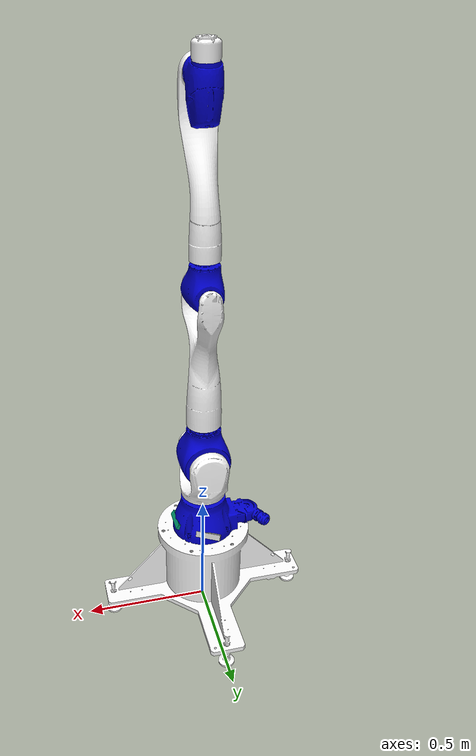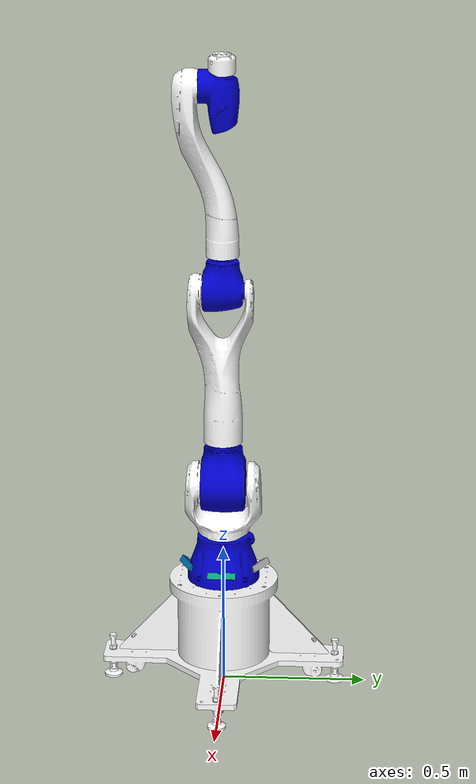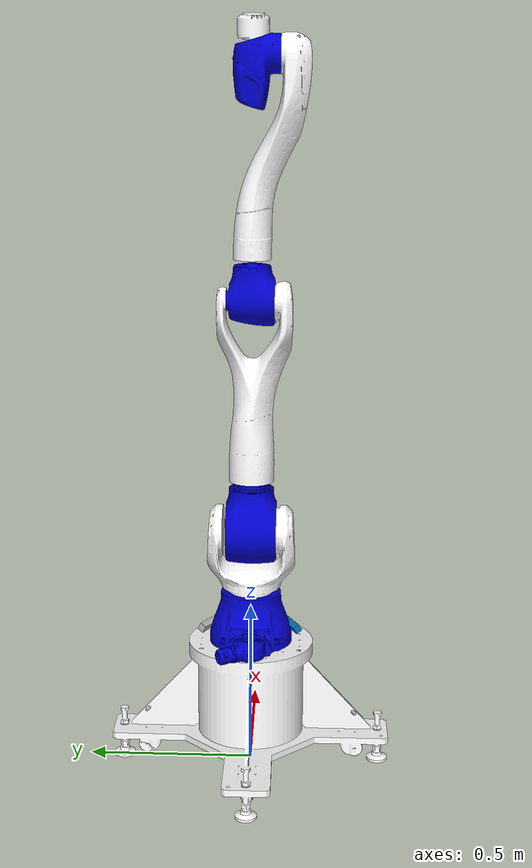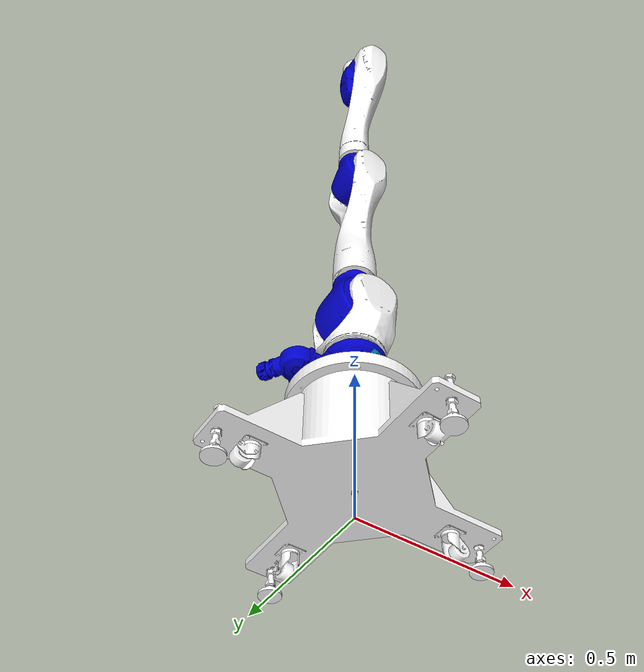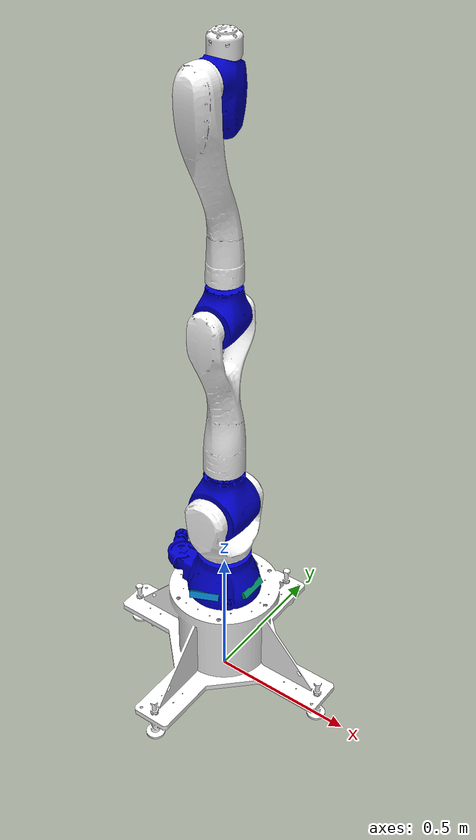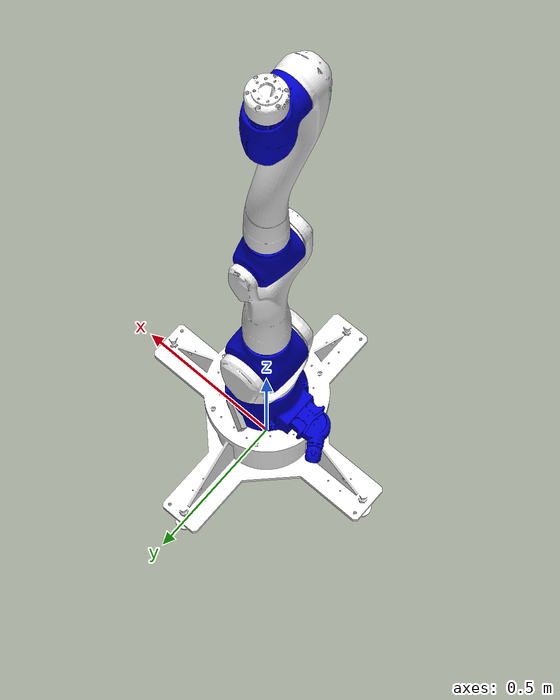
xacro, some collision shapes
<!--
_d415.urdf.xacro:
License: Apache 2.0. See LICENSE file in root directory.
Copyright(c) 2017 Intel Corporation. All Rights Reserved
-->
<?xml version="1.0"?>
<robot xmlns:xacro="http://wiki.ros.org/xacro"
       name="mira" >

  <xacro:arg name="transmission_hw_interface" default="hardware_interface/PositionJointInterface"/>
  <xacro:arg name="prefix" default=""/>

  <!-- mira -->
  <xacro:include filename="$(find mira_picker)/urdf/mira_picker_macro.xacro"/>
  <xacro:include filename="$(find mira_gazebo)/robots/mira.gazebo.xacro"/>
  <xacro:include filename="$(find mira_gazebo)/sensors/realsense_gazebo.xacro"/>

  <!-- arm -->
  <xacro:mira_picker prefix="$(arg prefix)" />
  <xacro:mira_arm_gazebo prefix="$(arg prefix)"  transmission_hw_interface="$(arg transmission_hw_interface)" />
  <xacro:realsense_gazebo prefix="$(arg prefix)"  />

</robot>

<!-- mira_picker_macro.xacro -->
<robot xmlns:xacro="http://wiki.ros.org/xacro"
       name="mira" >

    <xacro:arg name="prefix" default=""/>

    <xacro:include filename="$(find mira_description)/urdf/mira_sensors_macro.xacro" />

    <xacro:macro name="mira_picker" params="prefix wrist_cam_calibration=true dentist_camera=false">
        <xacro:mira_robot_sensors prefix="${prefix}" wrist_cam_calibration="${wrist_cam_calibration}" dentist_camera="${dentist_camera}"/>

        <link name="${prefix}table_calibration">
            <visual>
                <origin rpy="0 0 0" xyz="0 0 0"/>
                <geometry>
                    <mesh filename="package://mira_picker/meshes/table/visual/table_calibration.stl"/>
                </geometry>
                <material name="white"/>
                </visual>
        </link>
        <link name="world" />
        <joint name="world_joint" type="fixed">
            <parent link="world" />
            <child link = "${prefix}root_link" />
            <origin xyz="0.0 0.0 0.391" rpy="0.0 0.0 0.0" />
        </joint>
        <joint name="${prefix}baselink_table" type="fixed">
            <origin rpy="0 0 0.0" xyz="0 0 -0.310"/>
            <parent link="${prefix}root_link"/>
            <child link="${prefix}table_calibration"/>
        </joint>
        <link name="threejs_link" />
        <joint name="threejs_joint" type="fixed">
            <parent link="world" />
            <child link = "${prefix}threejs_link" />
            <origin xyz="0.0 0.0 0.391" rpy="1.5708 0.0 0.0" />
        </joint>
    </xacro:macro>
</robot>

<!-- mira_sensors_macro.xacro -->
<robot xmlns:xacro="http://wiki.ros.org/xacro" name="mira" >

  <xacro:include filename="$(find realsense2_description)/urdf/_d415.urdf.xacro" />
  <xacro:include filename="$(find mira_description)/urdf/mira_macro.xacro" />

  <!-- arm -->
  <xacro:macro name="mira_robot_sensors" params="prefix wrist_cam_calibration:=true dentist_camera:=^">
    <xacro:mira_robot prefix="${prefix}" parameter_file_name="mira_nominal"/>

    <!-- For simulation of wrist camera -->
    <xacro:unless value="${wrist_cam_calibration}">
      <link name="$(arg prefix)intermediate_camera_link" />
      <joint name="$(arg prefix)intermediate_camera_joint" type="fixed">
          <parent link="$(arg prefix)link6" />
          <child link = "$(arg prefix)intermediate_camera_link" />
          <origin rpy="0.0 1.5708 3.14159" xyz="0.0115 0.073 -0.0423" />
      </joint>

      <xacro:sensor_d415 parent="${prefix}intermediate_camera_link" use_nominal_extrinsics="true">
        <origin rpy="0 0 -0.0610865" xyz=" 0 0 0 "/>
      </xacro:sensor_d415>
    </xacro:unless>

    <!-- For use of calibrated wrist camera -->
    <xacro:if value="${wrist_cam_calibration}">
      <link name="${prefix}camera_calibration_link"/>
      <joint name="${prefix}camera_calibration_joint" type="fixed">
        <origin xyz="0.02 0.01 -0.04" rpy="-1.5708 -1.5708 0.0 " />
        <parent link="${prefix}link6" />
        <child link="${prefix}camera_calibration_link" />
      </joint>
    </xacro:if>

    <!-- Base cameras -->
    <link name = "${prefix}base_camera_1_parent_link"/>
    <joint name="${prefix}base_link_to_base_camera1_parent_link" type="fixed">
      <origin rpy="0.0 0.0 -0.5074274" xyz=" 0.13019 -0.011751 0.037583 "/>
      <parent link="${prefix}base_link"/>
      <child link="${prefix}base_camera_1_parent_link"/>
    </joint>

    <xacro:sensor_d415 parent="${prefix}base_camera_1_parent_link" name="base_camera_1" use_nominal_extrinsics="true">
      <origin rpy="0 -0.5162342 0" xyz="0 0 0"/>
    </xacro:sensor_d415>

    <link name = "${prefix}base_camera_2_parent_link"/>
      <joint name="${prefix}base_link_to_base_camera_2_parent_link" type="fixed">
      <origin rpy="0.0 0.0 -1.5707713" xyz=" 0.000 -0.117921 0.037837 "/>
      <parent link="${prefix}base_link"/>
      <child link="${prefix}base_camera_2_parent_link"/>
    </joint>

    <xacro:sensor_d415 parent="${prefix}base_camera_2_parent_link" name="base_camera_2" use_nominal_extrinsics="true">
      <origin rpy="0 -0.5759183 0" xyz="0 0 0 "/>
    </xacro:sensor_d415>

    <xacro:sensor_d415 parent="${prefix}base_link" name="base_camera_3" use_nominal_extrinsics="true">
      <origin rpy="3.1415759 -0.5760 -2.7051773" xyz="-0.117849 -0.005996 0.058549"/>
    </xacro:sensor_d415>

    <link name = "${prefix}base_camera_3_color_optical_frame_rotated"/>
    <joint name="${prefix}base_camera_3_rotation_joint" type="fixed">
      <origin rpy="0.0 0.0 3.14159" xyz="0.0 0.0 0.0"/>
      <parent link="${prefix}base_camera_3_color_optical_frame"/>
      <child link="${prefix}base_camera_3_color_optical_frame_rotated"/>
    </joint>

    <!-- Radar -->
    <link name = "${prefix}radar_link"/>
    <joint name="${prefix}base_link_to_radar_link_joint" type="fixed">
      <origin rpy="0.0 0.0 2.356" xyz="-0.07 -0.1 0.05"/>
      <parent link="${prefix}base_link"/>
      <child link="${prefix}radar_link"/>
    </joint>

  <!-- Dental wrist camera-->
  <xacro:if value="${dentist_camera}">
    <link name="${prefix}dentist_camera_housing">
			<visual>
				<origin rpy="0 0 0" xyz="0 0.0 0."/>
				<geometry>
					<box size="0.085 0.11 0.035"/>
				</geometry>
				<material name="white"/>
			</visual>
			<collision>
				<origin rpy="0 0 0" xyz="0 0.0 0."/>
				<geometry>
					<box size="0.085 0.11 0.035"/>
				</geometry>
				<material name="white"/>
			</collision>
		</link>
		<joint name="${prefix}link7_to_dentist_camera_housing" type="fixed">
			<origin rpy="0 0 0" xyz="0 -0.05 0.08" />
			<parent link="${prefix}link7"/>
			<child link="${prefix}dentist_camera_housing"/>
		</joint>
  </xacro:if>

  </xacro:macro>

</robot>

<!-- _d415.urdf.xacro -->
<robot name="sensor_d415" xmlns:xacro="http://ros.org/wiki/xacro">
  <!-- Includes -->

  <xacro:arg name="camera" default="camera"/>
  <xacro:include filename="$(find realsense2_description)/urdf/_materials.urdf.xacro" />

  <xacro:macro name="sensor_d415" params="parent *origin  name:=camera  use_nominal_extrinsics:=true">
    <xacro:property name="M_PI" value="3.1415926535897931" />

    <!-- The following values are approximate, and the camera node
     publishing TF values with actual calibrated camera extrinsic values -->
    <xacro:property name="d415_cam_depth_to_infra1_offset" value="0.0"/>
    <xacro:property name="d415_cam_depth_to_infra2_offset" value="-0.055"/>
    <xacro:property name="d415_cam_depth_to_color_offset" value="0.015"/>

    <!-- The following values model the aluminum peripherial case for the
  	d415 camera, with the camera joint represented by the actual
  	peripherial camera tripod mount -->
    <xacro:property name="d415_cam_width" value="0.099"/>
    <xacro:property name="d415_cam_height" value="0.023"/>
    <xacro:property name="d415_cam_depth" value="0.02005"/>
    <xacro:property name="d415_cam_mount_from_center_offset" value="0.00987"/>

    <!-- The following offset is relative the the physical d415 camera peripherial
  	camera tripod mount -->
    <xacro:property name="d415_cam_depth_px" value="${d415_cam_mount_from_center_offset}"/>
    <xacro:property name="d415_cam_depth_py" value="0.020"/>
    <xacro:property name="d415_cam_depth_pz" value="${d415_cam_height/2}"/>

    <!-- camera body, with origin at bottom screw mount -->
    <joint name="${name}_joint" type="fixed">
      <xacro:insert_block name="origin" />
      <parent link="${parent}"/>
      <child link="${name}_bottom_screw_frame" />
    </joint>

    <link name="${name}_bottom_screw_frame"/>

    <joint name="${name}_link_joint" type="fixed">
      <origin xyz="0 ${d415_cam_depth_py} ${d415_cam_depth_pz}" rpy="0 0 0"/>
      <parent link="${name}_bottom_screw_frame"/>
      <child link="${name}_link" />
    </joint>

    <link name="${name}_link">
      <visual>
      <origin xyz="${d415_cam_mount_from_center_offset} ${-d415_cam_depth_py} 0" rpy="${M_PI/2} 0 ${M_PI/2}"/>
        <geometry>
	         <mesh filename="package://realsense2_description/meshes/d415.stl" />
        </geometry>
        <material name="aluminum"/>
      </visual>
      <collision>
        <origin xyz="0 ${-d415_cam_depth_py} 0" rpy="0 0 0"/>
        <geometry>
        <box size="${d415_cam_depth} ${d415_cam_width} ${d415_cam_height}"/>
        </geometry>
      </collision>
      <inertial>
        <!-- The following are not reliable values, and should not be used for modeling -->
        <mass value="0.564" />
        <origin xyz="0 0 0" />
        <inertia ixx="0.003881243" ixy="0.0" ixz="0.0" iyy="0.000498940" iyz="0.0" izz="0.003879257" />
      </inertial>
    </link>

    <!-- Use the nominal extrinsics between camera frames if the calibrated extrinsics aren't being published. e.g. running the device in simulation  -->
    <xacro:if value="${use_nominal_extrinsics}">
      <!-- camera depth joints and links -->
      <joint name="${name}_depth_joint" type="fixed">
        <origin xyz="0 0 0" rpy="0 0 0"/>
        <parent link="${name}_link"/>
        <child link="${name}_depth_frame" />
      </joint>
      <link name="${name}_depth_frame"/>

      <joint name="${name}_depth_optical_joint" type="fixed">
        <origin xyz="0 0 0" rpy="${-M_PI/2} 0 ${-M_PI/2}" />
        <parent link="${name}_depth_frame" />
        <child link="${name}_depth_optical_frame" />
      </joint>
      <link name="${name}_depth_optical_frame"/>

      <!-- camera left IR joints and links -->
      <joint name="${name}_infra1_joint" type="fixed">
        <origin xyz="0 ${d415_cam_depth_to_infra1_offset} 0" rpy="0 0 0" />
        <parent link="${name}_link" />
        <child link="${name}_infra1_frame" />
      </joint>
      <link name="${name}_infra1_frame"/>

      <joint name="${name}_infra1_optical_joint" type="fixed">
        <origin xyz="0 0 0" rpy="${-M_PI/2} 0 ${-M_PI/2}" />
        <parent link="${name}_infra1_frame" />
        <child link="${name}_infra1_optical_frame" />
      </joint>
      <link name="${name}_infra1_optical_frame"/>

      <!-- camera right IR joints and links -->
      <joint name="${name}_infra2_joint" type="fixed">
        <origin xyz="0 ${d415_cam_depth_to_infra2_offset} 0" rpy="0 0 0" />
        <parent link="${name}_link" />
        <child link="${name}_infra2_frame" />
      </joint>
      <link name="${name}_infra2_frame"/>

      <joint name="${name}_infra2_optical_joint" type="fixed">
        <origin xyz="0 0 0" rpy="${-M_PI/2} 0 ${-M_PI/2}" />
        <parent link="${name}_infra2_frame" />
        <child link="${name}_infra2_optical_frame" />
      </joint>
      <link name="${name}_infra2_optical_frame"/>

      <!-- camera color joints and links -->
      <joint name="${name}_color_joint" type="fixed">
        <origin xyz="0 ${d415_cam_depth_to_color_offset} 0" rpy="0 0 0" />
        <parent link="${name}_link" />
        <child link="${name}_color_frame" />
      </joint>
      <link name="${name}_color_frame"/>

      <joint name="${name}_color_optical_joint" type="fixed">
        <origin xyz="0 0 0" rpy="${-M_PI/2} 0 ${-M_PI/2}" />
        <parent link="${name}_color_frame" />
        <child link="${name}_color_optical_frame" />
      </joint>
      <link name="${name}_color_optical_frame"/>
    </xacro:if>
  </xacro:macro>
</robot>

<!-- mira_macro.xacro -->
<robot name="mira" xmlns:xacro="http://wiki.ros.org/xacro" xmlns:controller="http://playerstage.sourceforge.net/gazebo/xmlschema/#controller" xmlns:interface="http://playerstage.sourceforge.net/gazebo/xmlschema/#interface" xmlns:sensor="http://playerstage.sourceforge.net/gazebo/xmlschema/#sensor" >

	<xacro:arg name="prefix" default=""/>
  	<xacro:arg name="parameter_file_name" default="mira_nominal"/>
  	<xacro:macro name="mira_robot" params="prefix:=${prefix} parameter_file_name:=mira_nominal">
		<xacro:include filename="$(find mira_description)/urdf/${parameter_file_name}.xacro" />
		<material name="blue">
			<color rgba="0 0 0.8 1"/>
		</material>

		<material name="white">
			<color rgba="1 1 1 1"/>
		</material>

		<material name="MelonYellow">
			<color rgba="1.0 0.6 0.0 1.0" />
		</material>

		<link name="${prefix}root_link"/>
		<joint name="${prefix}root_joint" type="fixed">  <!-- joint1 base_to_right_leg 0.2945 -->
			<origin rpy="0 0 1.5708" xyz="0 0 0.0" />
			<axis xyz="0 0 1" />
			<parent link="${prefix}root_link"/>
			<child link="${prefix}base_link"/>
		</joint>

		<link name="${prefix}base_link">  <!-- link0 -->
		<inertial>
			<mass value="9.02994035" />
			<origin rpy="0 0 0" xyz="-0.00864914 0.00066084 0.09191042" />
			<!-- did not chenge inertia values -->
			<inertia ixx="0.04871169" ixy="0.00072792"  ixz="-0.00354042"
									iyy="0.06082174" iyz="0.00036285"
														izz="0.06803946" />
		</inertial>
		<visual>
			<origin rpy="0 0 0" xyz="0 0 0" />
				<geometry>
				<mesh filename="package://mira_description/meshes/mira/Link0.stl"/>
				</geometry>
			<material name="blue"/>
		</visual>
		<collision>
			<origin rpy="0 0 0" xyz="0 0 0" />
				<geometry>
				<mesh filename="package://mira_description/meshes/collision/Link0.stl"/>
				</geometry>
			<material name="blue"/>
		</collision>
		</link>

		<link name="${prefix}link1">  <!-- link1 right_leg-->
		<inertial>
			<mass value="8.81388995" />
			<origin rpy="0 0 0" xyz="0.00009227 0.01727770 -0.09151695" />
			<inertia ixx="0.11695855" ixy="-0.00006599"  ixz="-0.00007443"
									iyy="0.09523956"    		iyz="-0.01391589"
																izz="0.05142057" />
		</inertial>
		<visual>
			<origin rpy="0 0 0" xyz="0 0 0" />
				<geometry>
				<mesh filename="package://mira_description/meshes/mira/Link1.stl"/>
				</geometry>
			<material name="white"/>
		</visual>
		<collision>
			<origin rpy="0 0 0" xyz="0 0 0" />
				<geometry>
				<mesh filename="package://mira_description/meshes/collision/Link1.stl"/>
				</geometry>
			<material name="white"/>
		</collision>
		</link>

		<joint name="${prefix}joint1" type="revolute">  <!-- joint1 base_to_right_leg 0.2945 -->
			<origin rpy="${R1} ${P1} ${Y1}" xyz="${x1} ${y1} ${z1}" />
			<axis xyz="0 0 1" />
			<limit lower="-3.14159" upper="3.14159" effort="1260" velocity="7.60" />
			<parent link="${prefix}base_link"/>
			<child link="${prefix}link1"/>
		</joint>

		<link name="${prefix}link2">  <!-- link2 right_base -->
			<inertial>
				<mass value="10.73876455" />
				<origin rpy="0 0 0" xyz="0.00005095 -0.02980593 0.00384129" />
				<inertia ixx="0.08469338" ixy="-0.00000976" ixz="0.00000284"
									iyy="0.04466526"        iyz="-0.00106970"
																izz="0.08929344" />
			</inertial>
			<visual>
				<origin rpy="0 0 0" xyz="0 0 0" />
				<geometry>
				<mesh filename="package://mira_description/meshes/mira/Link2.stl"/>
				</geometry>
				<material name="blue"/>
			</visual>
			<collision>
				<origin rpy="0 0 0" xyz="0 0 0" />
				<geometry>
				<mesh filename="package://mira_description/meshes/collision/Link2.stl"/>
				</geometry>
				<material name="blue"/>
			</collision>
		</link>

		<joint name="${prefix}joint2" type="revolute">  <!-- joint2 right_base_joint -->
			<origin rpy="${R2} ${P2} ${Y2}" xyz="${x2} ${y2} ${z2}" />
			<axis xyz="0 0 1" />
			<limit lower="-2.11" upper="2.11" effort="710" velocity="7.16" />
			<dynamics damping="13.0" friction="9.0" />
			<parent link="${prefix}link1"/>
			<child link="${prefix}link2"/>
		</joint>

		<link name="${prefix}link3">  <!-- link3 right_front_wheel -->
			<inertial>
				<mass value="7.80048461" />
				<origin rpy="0 0 0" xyz="0.00000508 -0.01311256 -0.29310398" />
				<inertia ixx="0.37362453" ixy="-0.00000061"  ixz="-0.00001502"
										iyy="0.36314616"    		iyz="0.02636093"
																	izz="0.02643739" />
			</inertial>
			<visual>
				<origin rpy="0 0 0" xyz="0 0 0" />
				<geometry>
					<mesh filename="package://mira_description/meshes/mira/Link3.stl"/>
				</geometry>
				<material name="white"/>
			</visual>
			<collision>
				<origin rpy="0 0 0" xyz="0 0 0" />
				<geometry>
					<mesh filename="package://mira_description/meshes/collision/Link3.stl"/>
				</geometry>
				<material name="white"/>
			</collision>
		</link>

		<joint name="${prefix}joint3" type="revolute">  <!-- joint3 right_front_wheel_joint -->
			<origin rpy="${R3} ${P3} ${Y3}" xyz="${x3} ${y3} ${z3}" />
			<!-- thin left 1.5708 3.1416 0  -->
			<axis xyz="0 0 1" />
			<limit lower="-3.14159" upper="3.14159" effort="380" velocity="9.43" />
			<dynamics damping="10.0" friction="4.5" />
			<parent link="${prefix}link2"/>
			<child link="${prefix}link3"/>
		</joint>

		<link name="${prefix}link4">  <!-- link4 right_back_wheel -->
			<inertial>
				<mass value="4.90782352" />
				<origin rpy="0 0 0" xyz="0.00000273   -0.02342897   -0.00561818" />
				<inertia ixx="0.02108339" ixy="-0.00000071"  ixz="-0.00000036"
										iyy="0.01108371"            iyz="0.00064263"
																	izz="0.02077348" />
			</inertial>
			<visual>
				<origin rpy="0 0 0" xyz="0 0 0" />
				<geometry>
					<mesh filename="package://mira_description/meshes/mira/Link4.stl" />
				</geometry>
				<material name="blue"/>
			</visual>
			<collision>
				<origin rpy="0 0 0" xyz="0 0 0" />
				<geometry>
					<mesh filename="package://mira_description/meshes/collision/Link4.stl" />
				</geometry>
				<material name="blue"/>
			</collision>
		</link>

		<joint name="${prefix}joint4" type="revolute">  <!-- joint4 right_back_wheel_joint -->
			<origin rpy="${R4} ${P4} ${Y4}" xyz="${x4} ${y4} ${z4}" />
			<axis xyz="0 0 1" />
			<limit lower="-2.35" upper="2.35" effort="70" velocity="17.4" />
			<dynamics damping="2.5" friction="4.0" />
			<parent link="${prefix}link3" />
			<child link="${prefix}link4" />
		</joint>

		<link name="${prefix}link5">  <!-- link5 left_leg -->
			<inertial>
				<mass value="5.89239887" />
				<origin rpy="0 0 0" xyz="0.00003764   0.05360461   -0.27051890" />
				<inertia ixx="0.34526601" ixy="-0.00001006"  ixz="-0.00004889"
											iyy="0.33395748"          iyz="-0.06425872"
																		izz="0.02387784" />
			</inertial>
			<visual>
				<origin rpy="0 0 0" xyz="0 0 0" />
				<geometry>
					<mesh filename="package://mira_description/meshes/mira/Link5.stl" />
				</geometry>
				<material name="white"/>
			</visual>
			<collision>
				<origin rpy="0 0 0" xyz="0 0 0" />
				<geometry>
					<mesh filename="package://mira_description/meshes/collision/Link5.stl" />
				</geometry>
				<material name="white"/>
			</collision>
		</link>

		<joint name="${prefix}joint5" type="revolute">  <!-- joint5 base_to_left_leg -0.65 -->
			<origin rpy="${R5} ${P5} ${Y5}" xyz="${x5} ${y5} ${z5}" />
			<axis xyz="0 0 1" />
			<limit lower="-3.14159" upper="3.14159" effort="80" velocity="18.6" />
			<dynamics damping="5.0" friction="4.0" />
			<parent link="${prefix}link4"/>
			<child link="${prefix}link5"/>
		</joint>

		<link name="${prefix}link6">  <!-- link6 left_base -->
			<inertial>
				<mass value="2.76974945" />
				<origin rpy="0 0 0" xyz="0.00007333   0.01105196   0.02462915" />
				<inertia ixx="0.00955946" ixy="-0.00001486" ixz="0.00000146"
											iyy="0.00723805"  iyz="0.00066557"
																izz="0.00641809" />
			</inertial>
			<visual>
				<origin rpy="0 0 0" xyz="0 0 0" />
				<geometry>
					<mesh filename="package://mira_description/meshes/mira/Link6.stl" />
				</geometry>
				<material name="blue"/>
			</visual>
			<collision>
				<origin rpy="0 0 0" xyz="0 0 0" />
				<geometry>
					<mesh filename="package://mira_description/meshes/collision/Link6.stl" />
				</geometry>
				<material name="blue"/>
			</collision>
		</link>

		<joint name="${prefix}joint6" type="revolute">  <!-- joint6 -->
			<origin rpy="${R6} ${P6} ${Y6}" xyz="${x6} ${y6} ${z6}" />
			<axis xyz="0 0 1" />
			<limit lower="-3.14159" upper="3.14159" effort="21" velocity="25.3" />
			<dynamics damping="1.25" friction="1.25" />
			<parent link="${prefix}link5"/>
			<child link="${prefix}link6"/>
		</joint>

		<link name="${prefix}link7">
			<inertial>
				<mass value="1.19341401" />
				<origin rpy="0 0 0" xyz="-0.00006102   0.00027280   0.04324279" />
				<inertia ixx="0.00254735" ixy="-0.00000278" ixz="-0.00000158"
											iyy="0.00255260"  iyz="-0.00000991"
																izz="0.00099944" />
			</inertial>
			<visual>
				<origin rpy="0 0 0" xyz="0 0 0" />
				<geometry>
					<mesh filename="package://mira_description/meshes/mira/Link7.stl" />
				</geometry>
				<material name="white"/>
			</visual>
			<collision>
				<origin rpy="0 0 0" xyz="0 0 0" />
				<geometry>
					<mesh filename="package://mira_description/meshes/collision/Link7.stl" />
				</geometry>
				<material name="white"/>
			</collision>
		</link>

		<joint name="${prefix}joint7" type="revolute">  <!-- joint7 -->
			<origin rpy="${R7} ${P7} ${Y7}" xyz="${x7} ${y7} ${z7}" />
			<axis xyz="0 0 1" />
			<limit lower="-3.14159" upper="3.14159" effort="10" velocity="10" />
			<dynamics damping="2" friction="2" />
			<parent link="${prefix}link6"/>
			<child link="${prefix}link7"/>
		</joint>

		<link name = "${prefix}tool0"/>
		<joint name="${prefix}link7_to_tool0" type="fixed">  <!-- joint7 -->
			<origin rpy="0 0 0" xyz="0 0 0.10" />
			<parent link="${prefix}link7"/>
			<child link="${prefix}tool0"/>
		</joint>

		<link name = "${prefix}flange"/>
		<joint name="${prefix}link7_to_flange" type="fixed">  <!-- joint7 -->
			<origin rpy="0 0 0" xyz="0 0 0.10" />
			<parent link="${prefix}link7"/>
			<child link="${prefix}flange"/>
		</joint>

		<link name = "${prefix}ee_link"/>
		<joint name="${prefix}flange_to_ee_link" type="fixed">  <!-- joint7 -->
			<origin rpy="0 0 0" xyz="0 0 0.0" />
			<parent link="${prefix}flange"/>
			<child link="${prefix}ee_link"/>
		</joint>
	</xacro:macro>
</robot>

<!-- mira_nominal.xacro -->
<robot xmlns:xacro="http://wiki.ros.org/xacro" name="mira">

<!-- Encoder offsets are not included here but set in a separate config file -->

<!-- Joint 1 -->
<xacro:property name="x1" value="0" />
<xacro:property name="y1" value="0" />
<xacro:property name="z1" value="0.352" />
<xacro:property name="R1" value="0" />
<xacro:property name="P1" value="0" />
<xacro:property name="Y1" value="-1.5708" />
<!-- Joint 2 -->
<xacro:property name="x2" value="0" />
<xacro:property name="y2" value="0" />
<xacro:property name="z2" value="0" />
<xacro:property name="R2" value="-1.5708" />
<xacro:property name="P2" value="0" />
<xacro:property name="Y2" value="0" />
<!-- Joint 3 -->
<xacro:property name="x3" value="0" />
<xacro:property name="y3" value="-0.7" />
<xacro:property name="z3" value="0" />
<xacro:property name="R3" value="1.5708" />
<xacro:property name="P3" value="-0" />
<xacro:property name="Y3" value="0" />
<!-- Joint 4 -->
<xacro:property name="x4" value="0" />
<xacro:property name="y4" value="0" />
<xacro:property name="z4" value="0" />
<xacro:property name="R4" value="-1.5708" />
<xacro:property name="P4" value="0" />
<xacro:property name="Y4" value="0" />
<!-- Joint 5 -->
<xacro:property name="x5" value="0" />
<xacro:property name="y5" value="-0.7" />
<xacro:property name="z5" value="0" />
<xacro:property name="R5" value="1.5708" />
<xacro:property name="P5" value="3.14159" />
<xacro:property name="Y5" value="0" />
<!-- Joint 6 -->
<xacro:property name="x6" value="0" />
<xacro:property name="y6" value="0" />
<xacro:property name="z6" value="0" />
<xacro:property name="R6" value="-1.5708" />
<xacro:property name="P6" value="0" />
<xacro:property name="Y6" value="0" />
<!-- Joint 7 -->
<xacro:property name="x7" value="0" />
<xacro:property name="y7" value="0" />
<xacro:property name="z7" value="0" />
<xacro:property name="R7" value="1.5708" />
<xacro:property name="P7" value="0" />
<xacro:property name="Y7" value="0" />
</robot>
